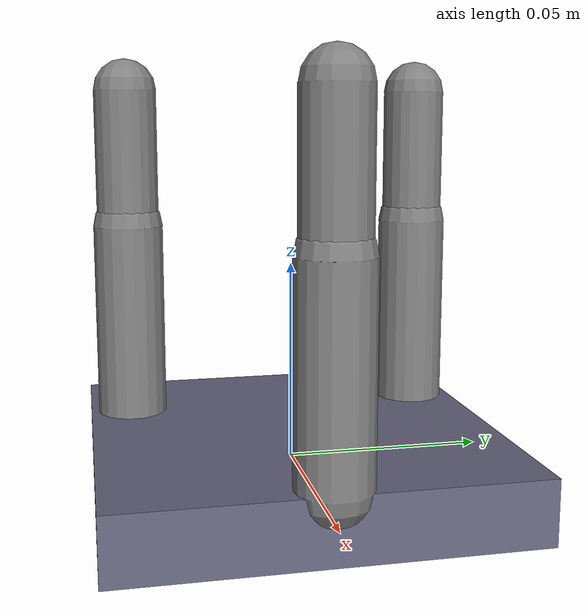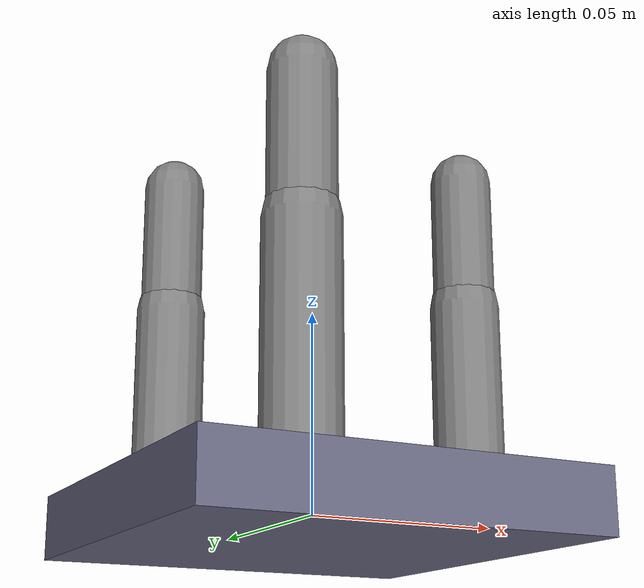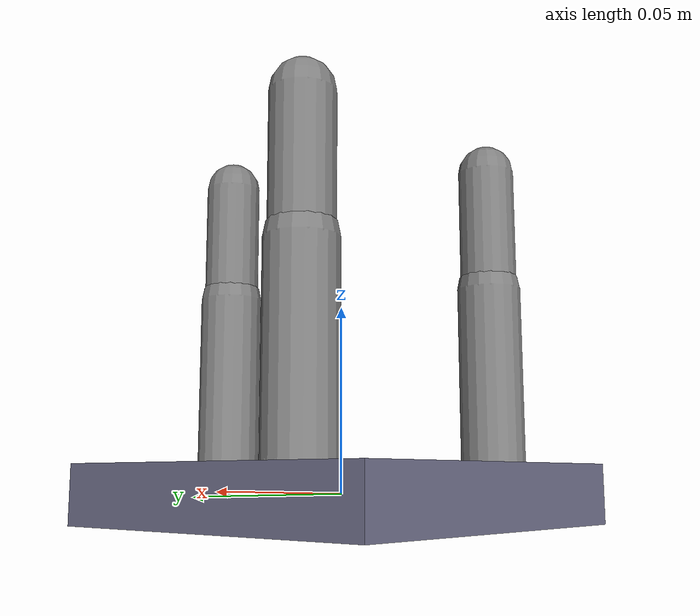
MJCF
<mujoco model="toy_hand">
  <compiler angle="radian"/>
  <default>
    <joint damping="0.05" armature="0.001"/>
    <geom friction="1 0.005 0.0001" density="800"/>
    <position kp="2" ctrlrange="-1 1.4" forcerange="-3 3"/>
  </default>
  <worldbody>
    <body name="palm">
      <geom name="palm_geom" type="box" size="0.05 0.05 0.008" rgba="0.4 0.4 0.5 1"/>
      <body name="finger_a" pos="0.045 0 0.008">
        <joint name="a_prox" axis="0 1 0" range="-1 1.4"/>
        <geom type="capsule" fromto="0 0 0 0 0 0.05" size="0.009"/>
        <body name="finger_a_tip" pos="0 0 0.05">
          <joint name="a_dist" axis="0 1 0" range="-1 1.4"/>
          <geom name="tip_a" type="capsule" fromto="0 0 0 0 0 0.035" size="0.008"/>
        </body>
      </body>
      <body name="finger_b" pos="-0.0225 0.039 0.008" euler="0 0 2.0944">
        <joint name="b_prox" axis="0 1 0" range="-1 1.4"/>
        <geom type="capsule" fromto="0 0 0 0 0 0.05" size="0.009"/>
        <body name="finger_b_tip" pos="0 0 0.05">
          <joint name="b_dist" axis="0 1 0" range="-1 1.4"/>
          <geom name="tip_b" type="capsule" fromto="0 0 0 0 0 0.035" size="0.008"/>
        </body>
      </body>
      <body name="finger_c" pos="-0.0225 -0.039 0.008" euler="0 0 -2.0944">
        <joint name="c_prox" axis="0 1 0" range="-1 1.4"/>
        <geom type="capsule" fromto="0 0 0 0 0 0.05" size="0.009"/>
        <body name="finger_c_tip" pos="0 0 0.05">
          <joint name="c_dist" axis="0 1 0" range="-1 1.4"/>
          <geom name="tip_c" type="capsule" fromto="0 0 0 0 0 0.035" size="0.008"/>
        </body>
      </body>
    </body>
  </worldbody>
  <actuator>
    <position name="act_a_prox" joint="a_prox"/>
    <position name="act_a_dist" joint="a_dist"/>
    <position name="act_b_prox" joint="b_prox"/>
    <position name="act_b_dist" joint="b_dist"/>
    <position name="act_c_prox" joint="c_prox"/>
    <position name="act_c_dist" joint="c_dist"/>
  </actuator>
</mujoco>
